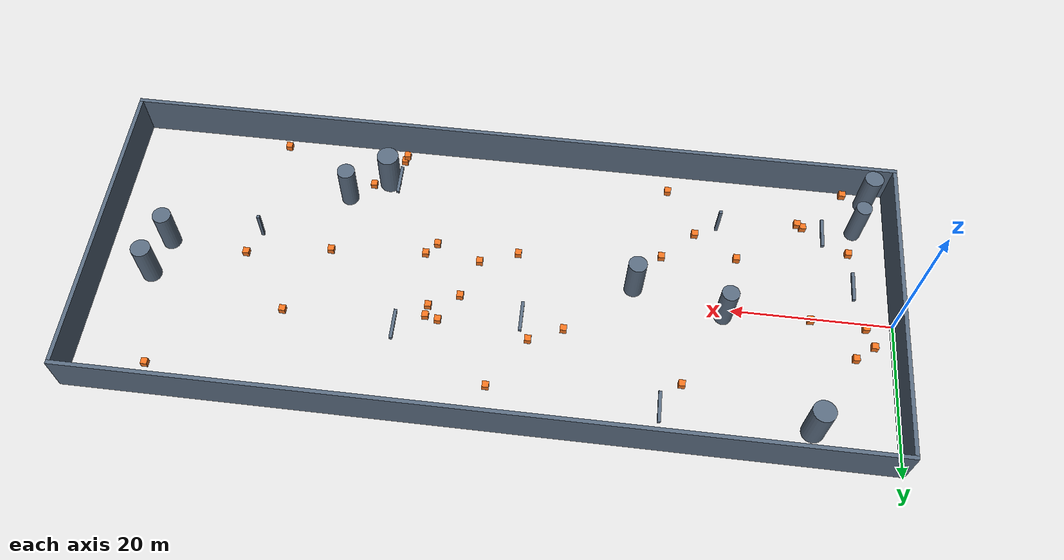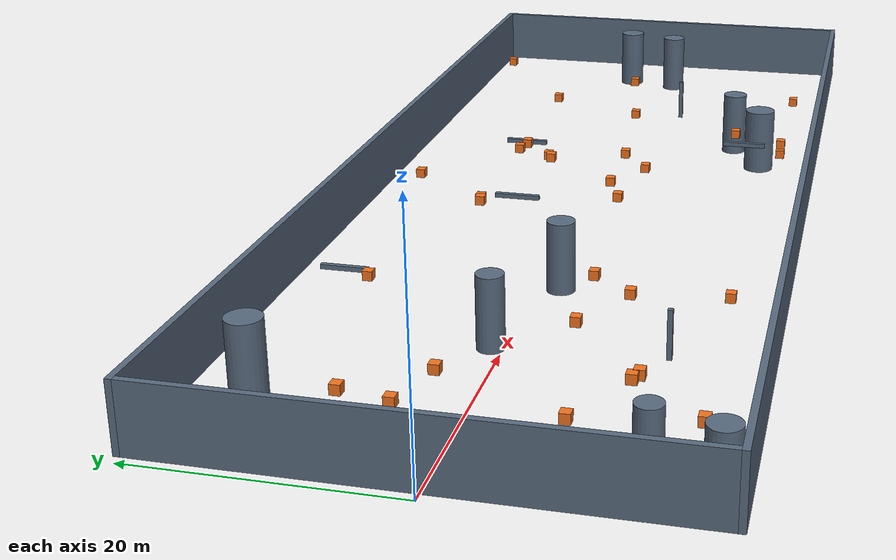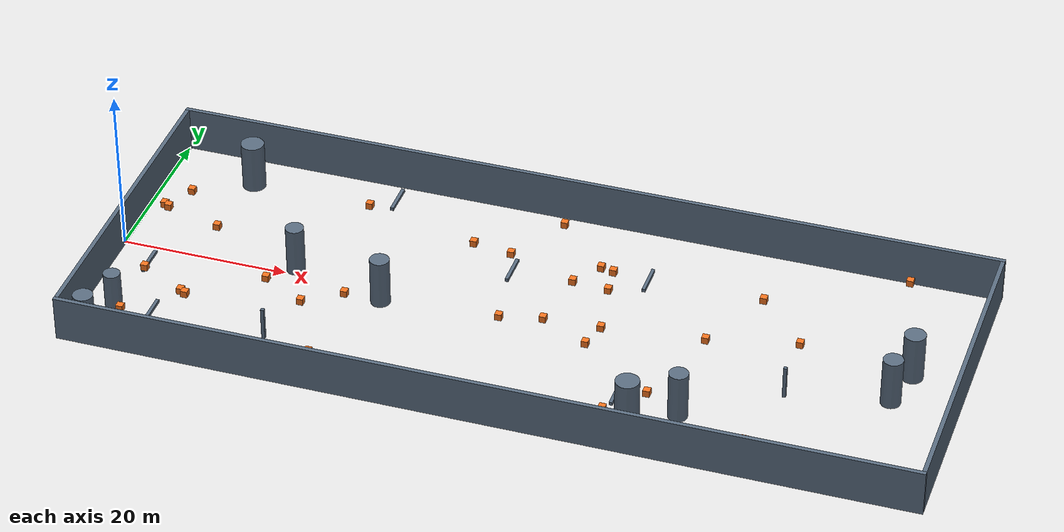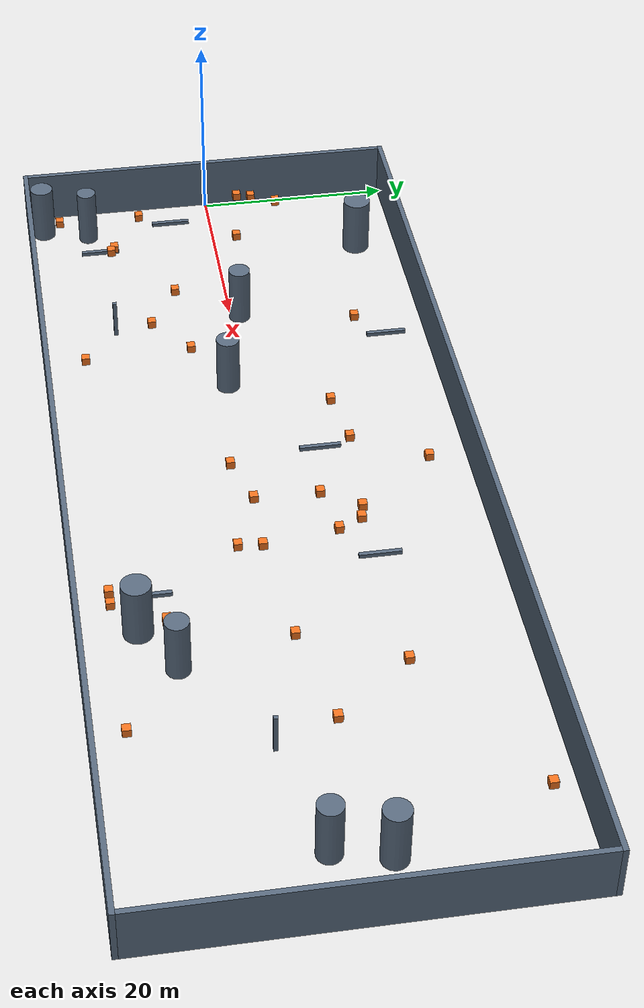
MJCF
<mujoco model="D01">
  <compiler angle="radian" />
  <include file="boundary.xml" />
  <custom>
    <text name="scene_metadata" data="{&quot;id&quot;: &quot;D01&quot;, &quot;difficulty&quot;: &quot;easy&quot;, &quot;title&quot;: &quot;SANDO easy dynamic benchmark&quot;, &quot;source&quot;: &quot;SANDO&quot;, &quot;dynamic&quot;: true, &quot;benchmark_role&quot;: &quot;primary&quot;, &quot;review_duration_s&quot;: 45.0, &quot;layout_policy&quot;: &quot;SANDO dynamic benchmark laws; fixed bounded realization; no route reservation&quot;, &quot;source_provenance&quot;: {&quot;seed&quot;: 0, &quot;total_obstacles&quot;: 50, &quot;dynamic_obstacles&quot;: 32, &quot;static_obstacles&quot;: 18, &quot;static_cylinders&quot;: 9, &quot;static_boxes&quot;: 9, &quot;static_vertical_boxes&quot;: 3, &quot;static_horizontal_boxes&quot;: 6, &quot;dynamic_fraction&quot;: 0.65, &quot;static_box_fraction_of_static_share&quot;: 0.5, &quot;static_box_vertical_fraction&quot;: 0.35, &quot;bounded_sampling_rejections&quot;: 56, &quot;sampling_note&quot;: &quot;SANDO dynamic laws conditioned on P5 physical bounds and endpoint safety; half of the static-cylinder share replaced by SANDO-sized static boxes&quot;}, &quot;topology_acceptance&quot;: {&quot;require_direct_route_blocked&quot;: true, &quot;require_reachable&quot;: true, &quot;max_full_length_straight_lanes&quot;: null, &quot;max_clear_straight_run_m&quot;: null}, &quot;obstacle_metadata&quot;: [{&quot;role&quot;: &quot;sando_dynamic_cube&quot;, &quot;source_index&quot;: 0}, {&quot;role&quot;: &quot;sando_dynamic_cube&quot;, &quot;source_index&quot;: 1}, {&quot;role&quot;: &quot;sando_dynamic_cube&quot;, &quot;source_index&quot;: 2}, {&quot;role&quot;: &quot;sando_dynamic_cube&quot;, &quot;source_index&quot;: 3}, {&quot;role&quot;: &quot;sando_dynamic_cube&quot;, &quot;source_index&quot;: 4}, {&quot;role&quot;: &quot;sando_dynamic_cube&quot;, &quot;source_index&quot;: 5}, {&quot;role&quot;: &quot;sando_dynamic_cube&quot;, &quot;source_index&quot;: 6}, {&quot;role&quot;: &quot;sando_dynamic_cube&quot;, &quot;source_index&quot;: 7}, {&quot;role&quot;: &quot;sando_dynamic_cube&quot;, &quot;source_index&quot;: 8}, {&quot;role&quot;: &quot;sando_dynamic_cube&quot;, &quot;source_index&quot;: 9}, {&quot;role&quot;: &quot;sando_dynamic_cube&quot;, &quot;source_index&quot;: 10}, {&quot;role&quot;: &quot;sando_dynamic_cube&quot;, &quot;source_index&quot;: 11}, {&quot;role&quot;: &quot;sando_dynamic_cube&quot;, &quot;source_index&quot;: 12}, {&quot;role&quot;: &quot;sando_dynamic_cube&quot;, &quot;source_index&quot;: 13}, {&quot;role&quot;: &quot;sando_dynamic_cube&quot;, &quot;source_index&quot;: 14}, {&quot;role&quot;: &quot;sando_dynamic_cube&quot;, &quot;source_index&quot;: 15}, {&quot;role&quot;: &quot;sando_dynamic_cube&quot;, &quot;source_index&quot;: 16}, {&quot;role&quot;: &quot;sando_dynamic_cube&quot;, &quot;source_index&quot;: 17}, {&quot;role&quot;: &quot;sando_dynamic_cube&quot;, &quot;source_index&quot;: 18}, {&quot;role&quot;: &quot;sando_dynamic_cube&quot;, &quot;source_index&quot;: 19}, {&quot;role&quot;: &quot;sando_dynamic_cube&quot;, &quot;source_index&quot;: 20}, {&quot;role&quot;: &quot;sando_dynamic_cube&quot;, &quot;source_index&quot;: 21}, {&quot;role&quot;: &quot;sando_dynamic_cube&quot;, &quot;source_index&quot;: 22}, {&quot;role&quot;: &quot;sando_dynamic_cube&quot;, &quot;source_index&quot;: 23}, {&quot;role&quot;: &quot;sando_dynamic_cube&quot;, &quot;source_index&quot;: 24}, {&quot;role&quot;: &quot;sando_dynamic_cube&quot;, &quot;source_index&quot;: 25}, {&quot;role&quot;: &quot;sando_dynamic_cube&quot;, &quot;source_index&quot;: 26}, {&quot;role&quot;: &quot;sando_dynamic_cube&quot;, &quot;source_index&quot;: 27}, {&quot;role&quot;: &quot;sando_dynamic_cube&quot;, &quot;source_index&quot;: 28}, {&quot;role&quot;: &quot;sando_dynamic_cube&quot;, &quot;source_index&quot;: 29}, {&quot;role&quot;: &quot;sando_dynamic_cube&quot;, &quot;source_index&quot;: 30}, {&quot;role&quot;: &quot;sando_dynamic_cube&quot;, &quot;source_index&quot;: 31}, {&quot;role&quot;: &quot;sando_static_vertical_box&quot;, &quot;source_index&quot;: 32}, {&quot;role&quot;: &quot;sando_static_vertical_box&quot;, &quot;source_index&quot;: 33}, {&quot;role&quot;: &quot;sando_static_vertical_box&quot;, &quot;source_index&quot;: 34}, {&quot;role&quot;: &quot;sando_static_horizontal_box&quot;, &quot;source_index&quot;: 35}, {&quot;role&quot;: &quot;sando_static_horizontal_box&quot;, &quot;source_index&quot;: 36}, {&quot;role&quot;: &quot;sando_static_horizontal_box&quot;, &quot;source_index&quot;: 37}, {&quot;role&quot;: &quot;sando_static_horizontal_box&quot;, &quot;source_index&quot;: 38}, {&quot;role&quot;: &quot;sando_static_horizontal_box&quot;, &quot;source_index&quot;: 39}, {&quot;role&quot;: &quot;sando_static_horizontal_box&quot;, &quot;source_index&quot;: 40}, {&quot;role&quot;: &quot;sando_dynamic_static_cylinder&quot;, &quot;source_index&quot;: 41}, {&quot;role&quot;: &quot;sando_dynamic_static_cylinder&quot;, &quot;source_index&quot;: 42}, {&quot;role&quot;: &quot;sando_dynamic_static_cylinder&quot;, &quot;source_index&quot;: 43}, {&quot;role&quot;: &quot;sando_dynamic_static_cylinder&quot;, &quot;source_index&quot;: 44}, {&quot;role&quot;: &quot;sando_dynamic_static_cylinder&quot;, &quot;source_index&quot;: 45}, {&quot;role&quot;: &quot;sando_dynamic_static_cylinder&quot;, &quot;source_index&quot;: 46}, {&quot;role&quot;: &quot;sando_dynamic_static_cylinder&quot;, &quot;source_index&quot;: 47}, {&quot;role&quot;: &quot;sando_dynamic_static_cylinder&quot;, &quot;source_index&quot;: 48}, {&quot;role&quot;: &quot;sando_dynamic_static_cylinder&quot;, &quot;source_index&quot;: 49}]}" />
  </custom>
  <worldbody>
    <body name="obstacle_4" mocap="true" pos="26.049231039195941 12.201113080520891 2.6947972153423572" user="1 2.0280834003280379 3.4394093728079085 2.7976470844485375 2.4745349314446989 42.392953161809466">
      <geom name="obstacle_geom_4" type="box" size="0.40000000000000002 0.40000000000000002 0.40000000000000002" rgba="0.95 0.45 0.12 1" />
    </body>
    <body name="obstacle_5" mocap="true" pos="10.905784593110369 2.0506898436220489 3.3262456394675586" user="1 3.0948818226568475 3.6289337265826722 3.0805672139406477 2.8915156379214029 41.360715848967082">
      <geom name="obstacle_geom_5" type="box" size="0.40000000000000002 0.40000000000000002 0.40000000000000002" rgba="0.95 0.45 0.12 1" />
    </body>
    <body name="obstacle_6" mocap="true" pos="58.761706417543635 -2.2004389489793539 2.8851474463324251" user="1 2.7698022919453207 3.151302028329777 2.5806590048055158 0.56817398566306843 34.74385294895518">
      <geom name="obstacle_geom_6" type="box" size="0.40000000000000002 0.40000000000000002 0.40000000000000002" rgba="0.95 0.45 0.12 1" />
    </body>
    <body name="obstacle_7" mocap="true" pos="89.817312135787901 16.923297592807074 2.6623996997922177" user="1 2.78259210046925 3.4105667997088123 2.5512682426242543 2.4348861255236356 45.274058851496306">
      <geom name="obstacle_geom_7" type="box" size="0.40000000000000002 0.40000000000000002 0.40000000000000002" rgba="0.95 0.45 0.12 1" />
    </body>
    <body name="obstacle_8" mocap="true" pos="79.332508413022424 -16.705080472134103 2.9511324201628488" user="1 2.9728884039383336 3.2602946808229456 3.6901551513430304 0.72910686618556875 43.399267532880948">
      <geom name="obstacle_geom_8" type="box" size="0.40000000000000002 0.40000000000000002 0.40000000000000002" rgba="0.95 0.45 0.12 1" />
    </body>
    <body name="obstacle_9" mocap="true" pos="11.713429320851798 -11.181578525286859 3.6783318868423036" user="1 2.6650722984393109 3.6318261930673188 2.2012150404321922 0.43907546673691156 42.861941002044489">
      <geom name="obstacle_geom_9" type="box" size="0.40000000000000002 0.40000000000000002 0.40000000000000002" rgba="0.95 0.45 0.12 1" />
    </body>
    <body name="obstacle_10" mocap="true" pos="4.5234067865612353 2.9546414715666778 4.1400640587961588" user="1 3.0683959365214477 3.3611782651245132 2.0533935893244104 1.9049997297343748 41.410808950800593">
      <geom name="obstacle_geom_10" type="box" size="0.40000000000000002 0.40000000000000002 0.40000000000000002" rgba="0.95 0.45 0.12 1" />
    </body>
    <body name="obstacle_11" mocap="true" pos="57.595294803154076 -4.3516236270869246 1.98055976134075" user="1 3.9610333012945373 2.0727840752229714 2.0432730197100479 2.8830938407188333 34.715927529485427">
      <geom name="obstacle_geom_11" type="box" size="0.40000000000000002 0.40000000000000002 0.40000000000000002" rgba="0.95 0.45 0.12 1" />
    </body>
    <body name="obstacle_12" mocap="true" pos="12.389516442443171 -11.576939604534143 3.7029863614167238" user="1 3.8739383172891615 2.0455651513373168 2.8512376639336345 0.30450065812250926 35.906738036330665">
      <geom name="obstacle_geom_12" type="box" size="0.40000000000000002 0.40000000000000002 0.40000000000000002" rgba="0.95 0.45 0.12 1" />
    </body>
    <body name="obstacle_13" mocap="true" pos="19.935579046706298 -5.6577879475359261 3.4263932249014424" user="1 3.6766531303868328 3.8369641239906631 2.3388492121949351 2.0179216907191577 47.13401338456309">
      <geom name="obstacle_geom_13" type="box" size="0.40000000000000002 0.40000000000000002 0.40000000000000002" rgba="0.95 0.45 0.12 1" />
    </body>
    <body name="obstacle_14" mocap="true" pos="5.8050943826498669 7.04807137197513 3.8816983748064655" user="1 2.6846250821571678 2.5013746785702233 3.1935827869388218 1.3269421010972369 34.554620213402437">
      <geom name="obstacle_geom_14" type="box" size="0.40000000000000002 0.40000000000000002 0.40000000000000002" rgba="0.95 0.45 0.12 1" />
    </body>
    <body name="obstacle_15" mocap="true" pos="47.162541509628795 -3.603784173697818 2.7764509580971208" user="1 3.0172002601252661 2.6228920020004134 2.714303365180526 2.5129835231069371 35.763944508934479">
      <geom name="obstacle_geom_15" type="box" size="0.40000000000000002 0.40000000000000002 0.40000000000000002" rgba="0.95 0.45 0.12 1" />
    </body>
    <body name="obstacle_16" mocap="true" pos="63.308875991830035 -16.661317992970829 3.4022174218452497" user="1 3.9736429604102561 2.8036336444250871 3.3570300104839363 0.94853141166402699 35.169587442765689">
      <geom name="obstacle_geom_16" type="box" size="0.40000000000000002 0.40000000000000002 0.40000000000000002" rgba="0.95 0.45 0.12 1" />
    </body>
    <body name="obstacle_17" mocap="true" pos="74.913482339086315 8.0529927037943878 3.1214474586989183" user="1 3.4247153050324837 3.8054203012386614 3.2802823995864481 1.117347788916768 40.323882454380104">
      <geom name="obstacle_geom_17" type="box" size="0.40000000000000002 0.40000000000000002 0.40000000000000002" rgba="0.95 0.45 0.12 1" />
    </body>
    <body name="obstacle_18" mocap="true" pos="51.900372870132927 -2.0582285761378181 2.4544752177086102" user="1 3.1697774039865489 3.3586051347442498 2.8460761470148448 1.1049943690032777 47.482132891581152">
      <geom name="obstacle_geom_18" type="box" size="0.40000000000000002 0.40000000000000002 0.40000000000000002" rgba="0.95 0.45 0.12 1" />
    </body>
    <body name="obstacle_19" mocap="true" pos="40.590688316794889 7.1971793244000892 4.0106263316043806" user="1 2.9908118498223777 3.83409334551963 2.6449206297626122 1.495322674472251 39.699747333827759">
      <geom name="obstacle_geom_19" type="box" size="0.40000000000000002 0.40000000000000002 0.40000000000000002" rgba="0.95 0.45 0.12 1" />
    </body>
    <body name="obstacle_20" mocap="true" pos="67.006815131529422 -11.920347648021856 2.9390824416671215" user="1 2.4375461937443115 2.6804406301020638 3.9251329265093635 2.6970241140930229 44.775674976806208">
      <geom name="obstacle_geom_20" type="box" size="0.40000000000000002 0.40000000000000002 0.40000000000000002" rgba="0.95 0.45 0.12 1" />
    </body>
    <body name="obstacle_21" mocap="true" pos="6.6359131037785239 -16.614274526677196 3.9755812560175139" user="1 2.0788316587560578 2.4501813073529921 2.0812640532918021 0.045855419909180406 45.186175115133629">
      <geom name="obstacle_geom_21" type="box" size="0.40000000000000002 0.40000000000000002 0.40000000000000002" rgba="0.95 0.45 0.12 1" />
    </body>
    <body name="obstacle_22" mocap="true" pos="57.387247749154923 7.1428542715743646 3.7204399561285482" user="1 3.5156927645227651 3.9810651254111242 3.4939307783002658 2.7173421700585987 35.051697470977054">
      <geom name="obstacle_geom_22" type="box" size="0.40000000000000002 0.40000000000000002 0.40000000000000002" rgba="0.95 0.45 0.12 1" />
    </body>
    <body name="obstacle_23" mocap="true" pos="53.541630432858099 3.9445705466987633 3.8027864686414152" user="1 2.9644271261318322 3.5820804234181911 2.7771377803002286 1.7591653667443488 45.303145012298259">
      <geom name="obstacle_geom_23" type="box" size="0.40000000000000002 0.40000000000000002 0.40000000000000002" rgba="0.95 0.45 0.12 1" />
    </body>
    <body name="obstacle_24" mocap="true" pos="3.2465462373943987 4.6960169472402171 3.0198651648733423" user="1 2.2105856493127298 3.0982875324635542 2.6933359532799366 1.1502422194946622 44.113148626079798">
      <geom name="obstacle_geom_24" type="box" size="0.40000000000000002 0.40000000000000002 0.40000000000000002" rgba="0.95 0.45 0.12 1" />
    </body>
    <body name="obstacle_25" mocap="true" pos="49.031967752424563 15.251064616489657 2.9404789716248936" user="1 2.9343768300761406 3.2646252801107689 2.6757307596575046 0.37297137758475729 42.621372876151028">
      <geom name="obstacle_geom_25" type="box" size="0.40000000000000002 0.40000000000000002 0.40000000000000002" rgba="0.95 0.45 0.12 1" />
    </body>
    <body name="obstacle_26" mocap="true" pos="81.025084943735891 0.7602923692560708 3.6419565974426606" user="1 2.3782549357143701 3.5642282127145881 2.8891592081126811 2.2698486638920952 39.013739799999918">
      <geom name="obstacle_geom_26" type="box" size="0.40000000000000002 0.40000000000000002 0.40000000000000002" rgba="0.95 0.45 0.12 1" />
    </body>
    <body name="obstacle_27" mocap="true" pos="63.696603741172041 -16.617772207242698 2.2792446205848154" user="1 2.7385120784795953 3.8978638578833236 2.1157142278020347 1.2258786635494441 38.406087963473148">
      <geom name="obstacle_geom_27" type="box" size="0.40000000000000002 0.40000000000000002 0.40000000000000002" rgba="0.95 0.45 0.12 1" />
    </body>
    <body name="obstacle_28" mocap="true" pos="55.81815883930463 7.5280121427413285 3.682628622728529" user="1 2.892328767899695 2.7975538102594122 3.5352814856425567 1.2951494866923361 35.716676285036215">
      <geom name="obstacle_geom_28" type="box" size="0.40000000000000002 0.40000000000000002 0.40000000000000002" rgba="0.95 0.45 0.12 1" />
    </body>
    <body name="obstacle_29" mocap="true" pos="70.62940429996884 -1.1426031313678529 3.2127149849438545" user="1 3.5201796734469841 2.4647254428824903 3.5239900261954231 0.84026515406516777 47.411525651368251">
      <geom name="obstacle_geom_29" type="box" size="0.40000000000000002 0.40000000000000002 0.40000000000000002" rgba="0.95 0.45 0.12 1" />
    </body>
    <body name="obstacle_30" mocap="true" pos="25.260808582471327 -8.6641398455804541 3.520891418234926" user="1 3.8175486504440141 3.1908198309728388 2.0709019313820551 2.3767094149251307 36.63258897181786">
      <geom name="obstacle_geom_30" type="box" size="0.40000000000000002 0.40000000000000002 0.40000000000000002" rgba="0.95 0.45 0.12 1" />
    </body>
    <body name="obstacle_31" mocap="true" pos="57.398180308237656 5.0855875641937054 2.6255032153518911" user="1 2.821609004671199 3.2691880247529319 2.8068257531736354 2.3356507771621433 44.299958091266404">
      <geom name="obstacle_geom_31" type="box" size="0.40000000000000002 0.40000000000000002 0.40000000000000002" rgba="0.95 0.45 0.12 1" />
    </body>
    <body name="obstacle_32" mocap="true" pos="29.225416811082216 -5.1278270577690179 3.0152436237875446" user="1 2.3141399342313145 3.3940638619738497 2.7628555059614262 1.7731874242710211 33.993972468288071">
      <geom name="obstacle_geom_32" type="box" size="0.40000000000000002 0.40000000000000002 0.40000000000000002" rgba="0.95 0.45 0.12 1" />
    </body>
    <body name="obstacle_33" mocap="true" pos="6.022210749970192 -7.9925939015116043 3.4808387606001832" user="1 2.1048117561241275 3.2422843905644703 2.0510935985356769 1.4145866049297013 45.894649035665161">
      <geom name="obstacle_geom_33" type="box" size="0.40000000000000002 0.40000000000000002 0.40000000000000002" rgba="0.95 0.45 0.12 1" />
    </body>
    <body name="obstacle_34" mocap="true" pos="28.792410486343755 -15.781589319104281 2.3435795818670315" user="1 2.6603915450592361 2.336510797302358 2.8434197850228093 2.6916029308916265 38.692792671954692">
      <geom name="obstacle_geom_34" type="box" size="0.40000000000000002 0.40000000000000002 0.40000000000000002" rgba="0.95 0.45 0.12 1" />
    </body>
    <body name="obstacle_35" mocap="true" pos="44.729189524972476 8.3531102977695184 2.5966474806091693" user="1 2.2584460706839868 3.8207847950879401 2.8882486723239302 2.3680132176760775 37.955643420208702">
      <geom name="obstacle_geom_35" type="box" size="0.40000000000000002 0.40000000000000002 0.40000000000000002" rgba="0.95 0.45 0.12 1" />
    </body>
    <body name="obstacle_36" mocap="true" pos="80.684601882069202 -4.4185433597018928 2" user="0 0 0 0 0 0">
      <geom name="obstacle_geom_36" type="box" size="0.20000000000000001 0.20000000000000001 2" rgba="0.35 0.42 0.5 1" />
    </body>
    <body name="obstacle_37" mocap="true" pos="22.015952166604581 -12.152213323333253 2" user="0 0 0 0 0 0">
      <geom name="obstacle_geom_37" type="box" size="0.20000000000000001 0.20000000000000001 2" rgba="0.35 0.42 0.5 1" />
    </body>
    <body name="obstacle_38" mocap="true" pos="94.003464433751034 3.4612103432408006 2" user="0 0 0 0 0 0">
      <geom name="obstacle_geom_38" type="box" size="0.20000000000000001 0.20000000000000001 2" rgba="0.35 0.42 0.5 1" />
    </body>
    <body name="obstacle_39" mocap="true" pos="4.9793265058264868 -4.4660961528780341 1.5425053378897371" user="0 0 0 0 0 0">
      <geom name="obstacle_geom_39" type="box" size="0.20000000000000001 2 0.20000000000000001" rgba="0.35 0.42 0.5 1" />
    </body>
    <body name="obstacle_40" mocap="true" pos="8.4657064609299333 -12.529765259143662 0.90516572799821238" user="0 0 0 0 0 0">
      <geom name="obstacle_geom_40" type="box" size="0.20000000000000001 2 0.20000000000000001" rgba="0.35 0.42 0.5 1" />
    </body>
    <body name="obstacle_41" mocap="true" pos="63.807362822810262 -13.065045406501245 2.8988075544766918" user="0 0 0 0 0 0">
      <geom name="obstacle_geom_41" type="box" size="0.20000000000000001 2 0.20000000000000001" rgba="0.35 0.42 0.5 1" />
    </body>
    <body name="obstacle_42" mocap="true" pos="61.250674789122975 8.1969484295974695 2.543627142201152" user="0 0 0 0 0 0">
      <geom name="obstacle_geom_42" type="box" size="0.20000000000000001 2 0.20000000000000001" rgba="0.35 0.42 0.5 1" />
    </body>
    <body name="obstacle_43" mocap="true" pos="28.442399033479827 15.098298157141116 1.971055894204649" user="0 0 0 0 0 0">
      <geom name="obstacle_geom_43" type="box" size="0.20000000000000001 2 0.20000000000000001" rgba="0.35 0.42 0.5 1" />
    </body>
    <body name="obstacle_44" mocap="true" pos="45.82943249787391 5.2751772692218566 2.558047473402818" user="0 0 0 0 0 0">
      <geom name="obstacle_geom_44" type="box" size="0.20000000000000001 2 0.20000000000000001" rgba="0.35 0.42 0.5 1" />
    </body>
    <body name="obstacle_45" mocap="true" pos="93.407634966525805 3.2384054227478387 3" user="0 0 0 0 0 0">
      <geom name="obstacle_geom_45" type="cylinder" size="1.2451010318650015 3" rgba="0.35 0.42 0.5 1" />
    </body>
    <body name="obstacle_46" mocap="true" pos="70.411681738236894 -11.38321628058128 3" user="0 0 0 0 0 0">
      <geom name="obstacle_geom_46" type="cylinder" size="1.1329360196077642 3" rgba="0.35 0.42 0.5 1" />
    </body>
    <body name="obstacle_47" mocap="true" pos="4.3807253633091676 -13.485698297678761 3" user="0 0 0 0 0 0">
      <geom name="obstacle_geom_47" type="cylinder" size="1.0019372749694053 3" rgba="0.35 0.42 0.5 1" />
    </body>
    <body name="obstacle_48" mocap="true" pos="65.462757652349808 -14.383720438572723 3" user="0 0 0 0 0 0">
      <geom name="obstacle_geom_48" type="cylinder" size="1.3933396727880261 3" rgba="0.35 0.42 0.5 1" />
    </body>
    <body name="obstacle_49" mocap="true" pos="92.139191345105274 -1.851833107218674 3" user="0 0 0 0 0 0">
      <geom name="obstacle_geom_49" type="cylinder" size="1.1697518699181035 3" rgba="0.35 0.42 0.5 1" />
    </body>
    <body name="obstacle_50" mocap="true" pos="10.233886991705376 15.313287402874387 3" user="0 0 0 0 0 0">
      <geom name="obstacle_geom_50" type="cylinder" size="1.3973950792812935 3" rgba="0.35 0.42 0.5 1" />
    </body>
    <body name="obstacle_51" mocap="true" pos="32.29289765350606 -1.7702246029748423 3" user="0 0 0 0 0 0">
      <geom name="obstacle_geom_51" type="cylinder" size="1.1625717329066241 3" rgba="0.35 0.42 0.5 1" />
    </body>
    <body name="obstacle_52" mocap="true" pos="2.8829116538094723 -18.225898984035322 3" user="0 0 0 0 0 0">
      <geom name="obstacle_geom_52" type="cylinder" size="1.1843520629410293 3" rgba="0.35 0.42 0.5 1" />
    </body>
    <body name="obstacle_53" mocap="true" pos="20.959132812878366 0.98058412842369336 3" user="0 0 0 0 0 0">
      <geom name="obstacle_geom_53" type="cylinder" size="1.0938925178248096 3" rgba="0.35 0.42 0.5 1" />
    </body>
  </worldbody>
</mujoco>

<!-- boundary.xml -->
<mujoco model="navigation-boundary">
  <worldbody>
    <body name="obstacle_0" mocap="true" pos="50 -19.75 3.25" user="0 0 0 0 0 0">
      <geom name="obstacle_geom_0" type="box" size="50 0.25 2.75" rgba="0.35 0.42 0.5 1" />
    </body>
    <body name="obstacle_1" mocap="true" pos="50 19.75 3.25" user="0 0 0 0 0 0">
      <geom name="obstacle_geom_1" type="box" size="50 0.25 2.75" rgba="0.35 0.42 0.5 1" />
    </body>
    <body name="obstacle_2" mocap="true" pos="0.25 0 3.25" user="0 0 0 0 0 0">
      <geom name="obstacle_geom_2" type="box" size="0.25 19.5 2.75" rgba="0.35 0.42 0.5 1" />
    </body>
    <body name="obstacle_3" mocap="true" pos="99.75 0 3.25" user="0 0 0 0 0 0">
      <geom name="obstacle_geom_3" type="box" size="0.25 19.5 2.75" rgba="0.35 0.42 0.5 1" />
    </body>
  </worldbody>
</mujoco>
